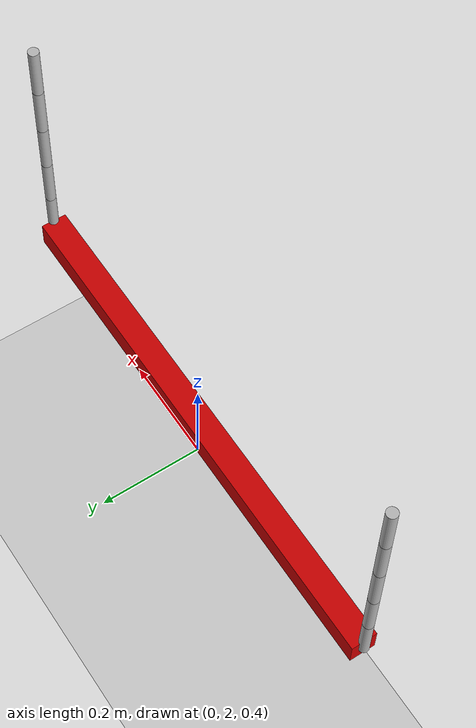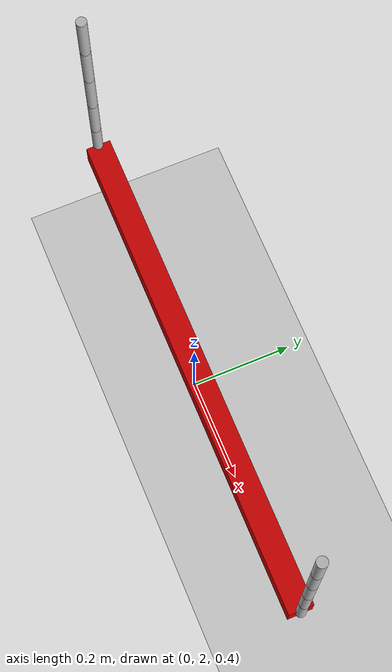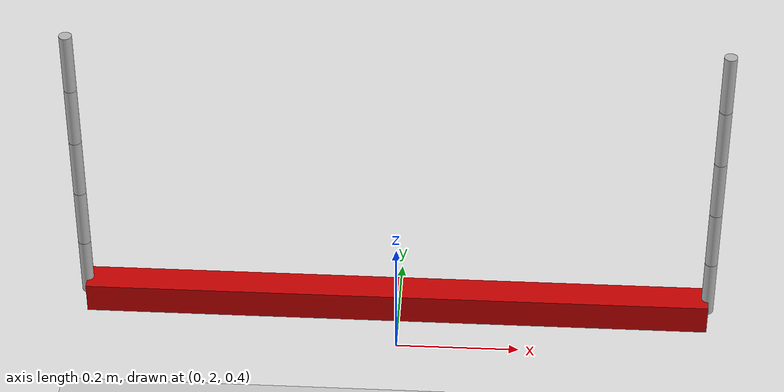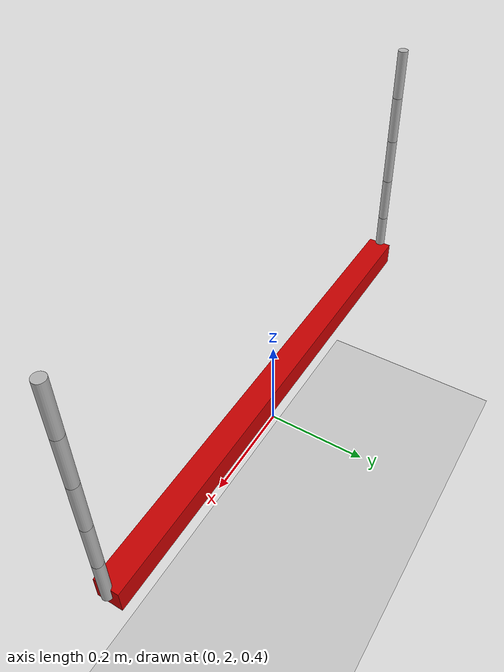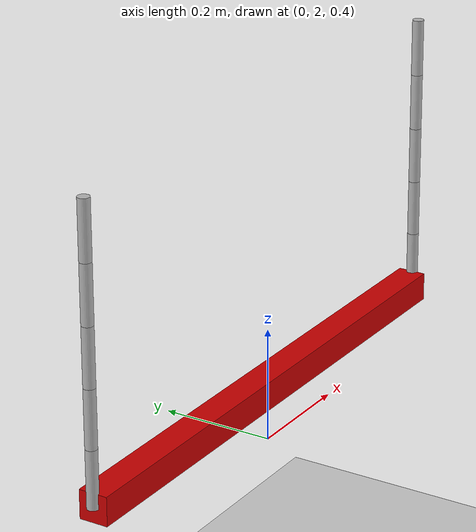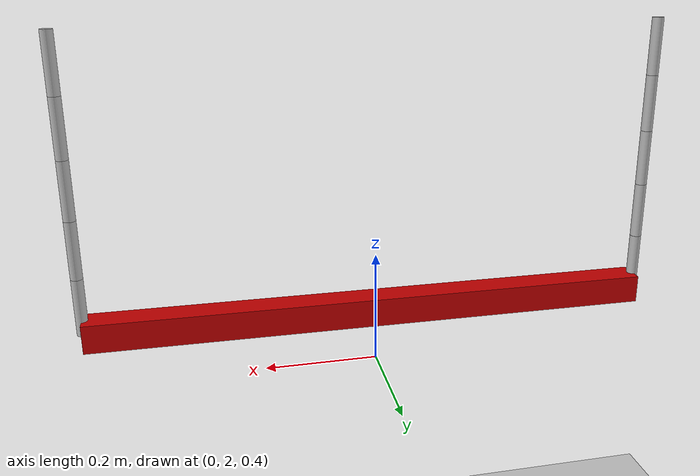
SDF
<sdf version="1.9">
 <world name="cooperative_transport_world">
  <physics type="ode">
   <max_step_size>0.004</max_step_size>
   <real_time_factor>1.0</real_time_factor>
   <real_time_update_rate>250</real_time_update_rate>
  </physics>
  <gravity>0 0 -9.8</gravity>
  <magnetic_field>6e-06 2.3e-05 -4.2e-05</magnetic_field>
  <atmosphere type="adiabatic"/>
  <scene>
   <grid>false</grid>
   <ambient>0.4 0.4 0.4 1</ambient>
   <background>0.7 0.7 0.7 1</background>
   <shadows>true</shadows>
  </scene>
  <model name="ground_plane">
   <static>true</static>
   <link name="link">
    <collision name="collision">
     <geometry><plane><normal>0 0 1</normal><size>1 1</size></plane></geometry>
    </collision>
    <visual name="visual">
     <geometry><plane><normal>0 0 1</normal><size>500 500</size></plane></geometry>
     <material>
      <ambient>0.8 0.8 0.8 1</ambient>
      <diffuse>0.8 0.8 0.8 1</diffuse>
      <specular>0.8 0.8 0.8 1</specular>
     </material>
    </visual>
    <inertial>
     <mass>1</mass>
     <inertia><ixx>1</ixx><ixy>0</ixy><ixz>0</ixz><iyy>1</iyy><iyz>0</iyz><izz>1</izz></inertia>
    </inertial>
   </link>
  </model>
  <light name="sunUTC" type="directional">
   <pose>0 0 500 0 -0 0</pose>
   <intensity>1</intensity>
   <direction>0.001 0.625 -0.78</direction>
   <diffuse>0.904 0.904 0.904 1</diffuse>
   <specular>0.271 0.271 0.271 1</specular>
   <attenuation><range>2000</range><linear>0</linear><constant>1</constant><quadratic>0</quadratic></attenuation>
   <spot><inner_angle>0</inner_angle><outer_angle>0</outer_angle><falloff>0</falloff></spot>
  </light>
  <wind><linear_velocity>0 10 0</linear_velocity></wind>
  <spherical_coordinates>
   <surface_model>EARTH_WGS84</surface_model>
   <world_frame_orientation>ENU</world_frame_orientation>
   <latitude_deg>47.397971057728974</latitude_deg>
   <longitude_deg>8.546163739800146</longitude_deg>
   <elevation>0</elevation>
  </spherical_coordinates>
  <model name="rod_payload">
   <pose>0 2 0.5 0 0 0</pose>
   <link name="rod_link">
    <inertial>
     <mass>1.0</mass>
     <inertia><ixx>0.000416</ixx><iyy>0.08354</iyy><izz>0.08354</izz></inertia>
    </inertial>
    <visual name="visual">
     <geometry><box><size>1 0.05 0.05</size></box></geometry>
     <material><ambient>0.8 0 0 1</ambient><diffuse>0.8 0 0 1</diffuse></material>
    </visual>
   </link>
   <link name="cable_left_0">
    <pose>-0.5 0 0.05 0 0 0</pose>
    <inertial>
     <mass>0.02</mass>
     <inertia><ixx>0.000017</ixx><iyy>0.000017</iyy><izz>0.000001</izz></inertia>
    </inertial>
    <visual name="v"><geometry><cylinder><radius>0.01</radius><length>0.1</length></cylinder></geometry></visual>
   </link>
   <link name="cable_left_1">
    <pose>-0.5 0 0.15 0 0 0</pose>
    <inertial>
     <mass>0.02</mass>
     <inertia><ixx>0.000017</ixx><iyy>0.000017</iyy><izz>0.000001</izz></inertia>
    </inertial>
    <visual name="v"><geometry><cylinder><radius>0.01</radius><length>0.1</length></cylinder></geometry></visual>
   </link>
   <link name="cable_left_2">
    <pose>-0.5 0 0.25 0 0 0</pose>
    <inertial>
     <mass>0.02</mass>
     <inertia><ixx>0.000017</ixx><iyy>0.000017</iyy><izz>0.000001</izz></inertia>
    </inertial>
    <visual name="v"><geometry><cylinder><radius>0.01</radius><length>0.1</length></cylinder></geometry></visual>
   </link>
   <link name="cable_left_3">
    <pose>-0.5 0 0.35 0 0 0</pose>
    <inertial>
     <mass>0.02</mass>
     <inertia><ixx>0.000017</ixx><iyy>0.000017</iyy><izz>0.000001</izz></inertia>
    </inertial>
    <visual name="v"><geometry><cylinder><radius>0.01</radius><length>0.1</length></cylinder></geometry></visual>
   </link>
   <link name="cable_left_4">
    <pose>-0.5 0 0.45 0 0 0</pose>
    <inertial>
     <mass>0.02</mass>
     <inertia><ixx>0.000017</ixx><iyy>0.000017</iyy><izz>0.000001</izz></inertia>
    </inertial>
    <visual name="v"><geometry><cylinder><radius>0.01</radius><length>0.1</length></cylinder></geometry></visual>
   </link>
   <link name="cable_left_top">
    <pose>-0.5 0 0.5 0 0 0</pose>
    <inertial><mass>0.01</mass><inertia><ixx>0.001</ixx><iyy>0.001</iyy><izz>0.001</izz></inertia></inertial>
   </link>
   <link name="cable_right_0">
    <pose>0.5 0 0.05 0 0 0</pose>
    <inertial>
     <mass>0.02</mass>
     <inertia><ixx>0.000017</ixx><iyy>0.000017</iyy><izz>0.000001</izz></inertia>
    </inertial>
    <visual name="v"><geometry><cylinder><radius>0.01</radius><length>0.1</length></cylinder></geometry></visual>
   </link>
   <link name="cable_right_1">
    <pose>0.5 0 0.15 0 0 0</pose>
    <inertial>
     <mass>0.02</mass>
     <inertia><ixx>0.000017</ixx><iyy>0.000017</iyy><izz>0.000001</izz></inertia>
    </inertial>
    <visual name="v"><geometry><cylinder><radius>0.01</radius><length>0.1</length></cylinder></geometry></visual>
   </link>
   <link name="cable_right_2">
    <pose>0.5 0 0.25 0 0 0</pose>
    <inertial>
     <mass>0.02</mass>
     <inertia><ixx>0.000017</ixx><iyy>0.000017</iyy><izz>0.000001</izz></inertia>
    </inertial>
    <visual name="v"><geometry><cylinder><radius>0.01</radius><length>0.1</length></cylinder></geometry></visual>
   </link>
   <link name="cable_right_3">
    <pose>0.5 0 0.35 0 0 0</pose>
    <inertial>
     <mass>0.02</mass>
     <inertia><ixx>0.000017</ixx><iyy>0.000017</iyy><izz>0.000001</izz></inertia>
    </inertial>
    <visual name="v"><geometry><cylinder><radius>0.01</radius><length>0.1</length></cylinder></geometry></visual>
   </link>
   <link name="cable_right_4">
    <pose>0.5 0 0.45 0 0 0</pose>
    <inertial>
     <mass>0.02</mass>
     <inertia><ixx>0.000017</ixx><iyy>0.000017</iyy><izz>0.000001</izz></inertia>
    </inertial>
    <visual name="v"><geometry><cylinder><radius>0.01</radius><length>0.1</length></cylinder></geometry></visual>
   </link>
   <link name="cable_right_top">
    <pose>0.5 0 0.5 0 0 0</pose>
    <inertial><mass>0.01</mass><inertia><ixx>0.001</ixx><iyy>0.001</iyy><izz>0.001</izz></inertia></inertial>
   </link>
   <joint name="left_rod_to_0" type="ball">
    <parent>rod_link</parent>
    <child>cable_left_0</child>
    <pose>0 0 -0.05 0 0 0</pose>
   </joint>
   <joint name="left_0_to_1" type="ball">
    <parent>cable_left_0</parent>
    <child>cable_left_1</child>
    <pose>0 0 -0.05 0 0 0</pose>
   </joint>
   <joint name="left_1_to_2" type="ball">
    <parent>cable_left_1</parent>
    <child>cable_left_2</child>
    <pose>0 0 -0.05 0 0 0</pose>
   </joint>
   <joint name="left_2_to_3" type="ball">
    <parent>cable_left_2</parent>
    <child>cable_left_3</child>
    <pose>0 0 -0.05 0 0 0</pose>
   </joint>
   <joint name="left_3_to_4" type="ball">
    <parent>cable_left_3</parent>
    <child>cable_left_4</child>
    <pose>0 0 -0.05 0 0 0</pose>
   </joint>
   <joint name="left_4_to_top" type="ball"><parent>cable_left_4</parent><child>cable_left_top</child></joint>
   <joint name="right_rod_to_0" type="ball">
    <parent>rod_link</parent>
    <child>cable_right_0</child>
    <pose>0 0 -0.05 0 0 0</pose>
   </joint>
   <joint name="right_0_to_1" type="ball">
    <parent>cable_right_0</parent>
    <child>cable_right_1</child>
    <pose>0 0 -0.05 0 0 0</pose>
   </joint>
   <joint name="right_1_to_2" type="ball">
    <parent>cable_right_1</parent>
    <child>cable_right_2</child>
    <pose>0 0 -0.05 0 0 0</pose>
   </joint>
   <joint name="right_2_to_3" type="ball">
    <parent>cable_right_2</parent>
    <child>cable_right_3</child>
    <pose>0 0 -0.05 0 0 0</pose>
   </joint>
   <joint name="right_3_to_4" type="ball">
    <parent>cable_right_3</parent>
    <child>cable_right_4</child>
    <pose>0 0 -0.05 0 0 0</pose>
   </joint>
   <joint name="right_4_to_top" type="ball"><parent>cable_right_4</parent><child>cable_right_top</child></joint>
   <plugin filename="gz-sim-detachable-joint-system" name="gz::sim::systems::DetachableJoint">
    <parent_link>cable_left_top</parent_link>
    <child_model>x500_0</child_model>
    <child_link>base_link</child_link>
    <topic>/x500_0/attach0</topic>
   </plugin>
   <plugin filename="gz-sim-detachable-joint-system" name="gz::sim::systems::DetachableJoint">
    <parent_link>cable_right_top</parent_link>
    <child_model>x500_1</child_model>
    <child_link>base_link</child_link>
    <topic>/x500_1/attach1</topic>
   </plugin>
   <plugin filename="gz-sim-pose-publisher-system" name="gz::sim::systems::PosePublisher">
    <publish_model_pose>true</publish_model_pose>
    <publish_link_pose>false</publish_link_pose>
    <publish_collision_pose>false</publish_collision_pose>
    <publish_visual_pose>false</publish_visual_pose>
    <use_pose_vector_msg>false</use_pose_vector_msg>
    <update_frequency>100</update_frequency>
   </plugin>
  </model>
 </world>
</sdf>
